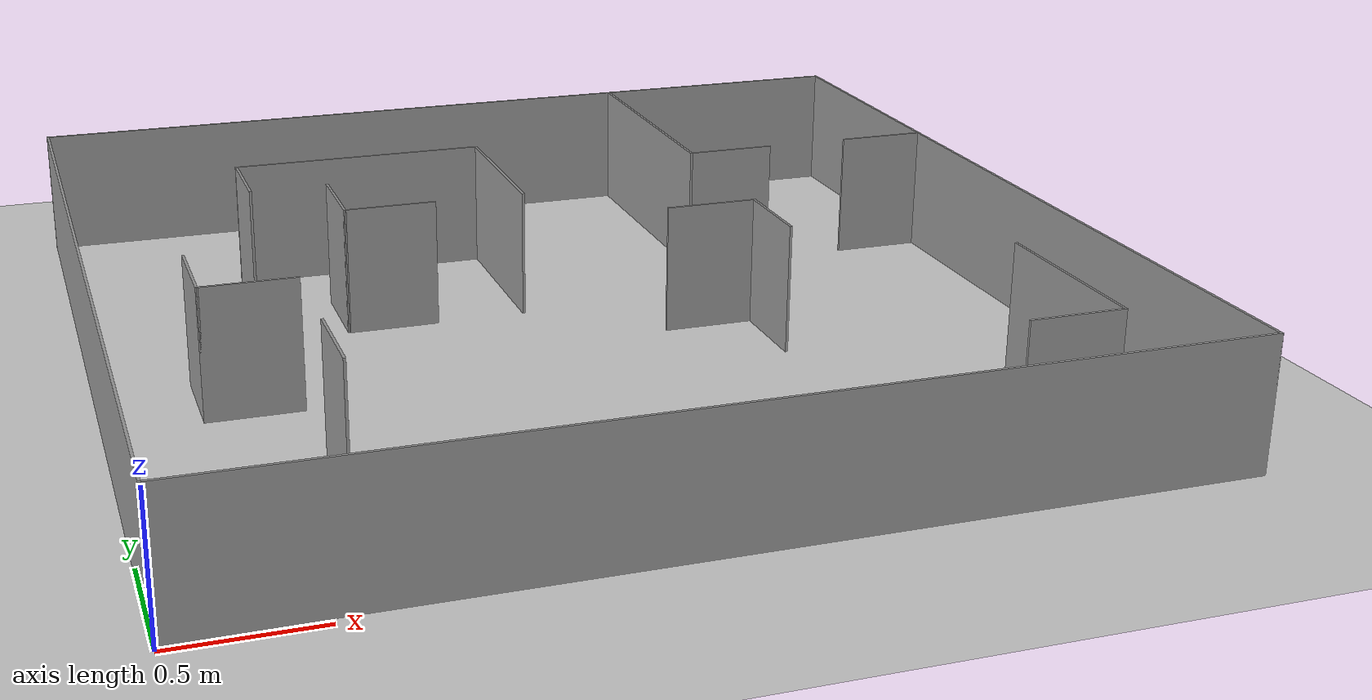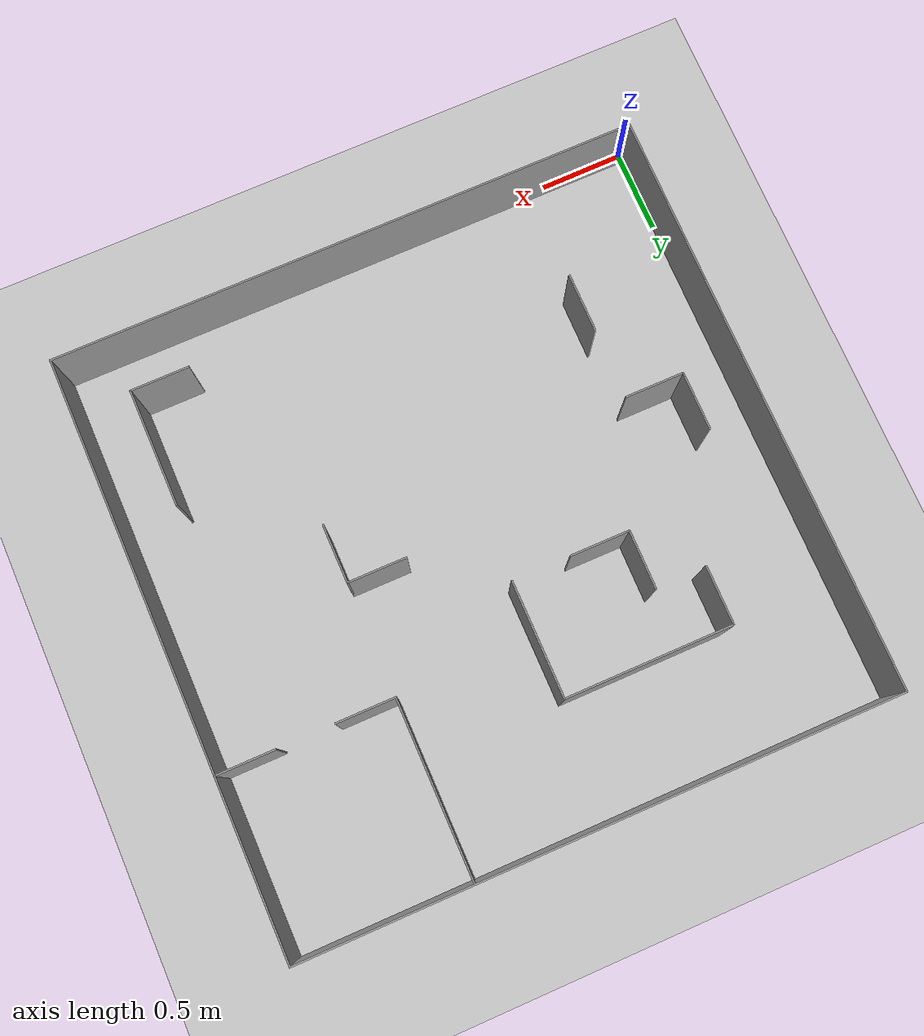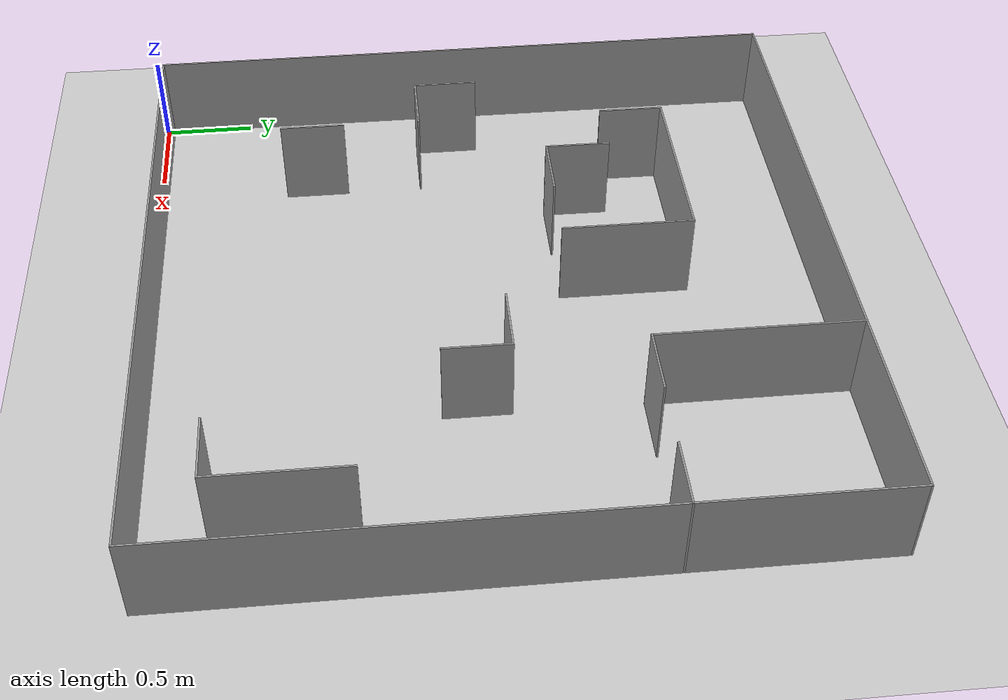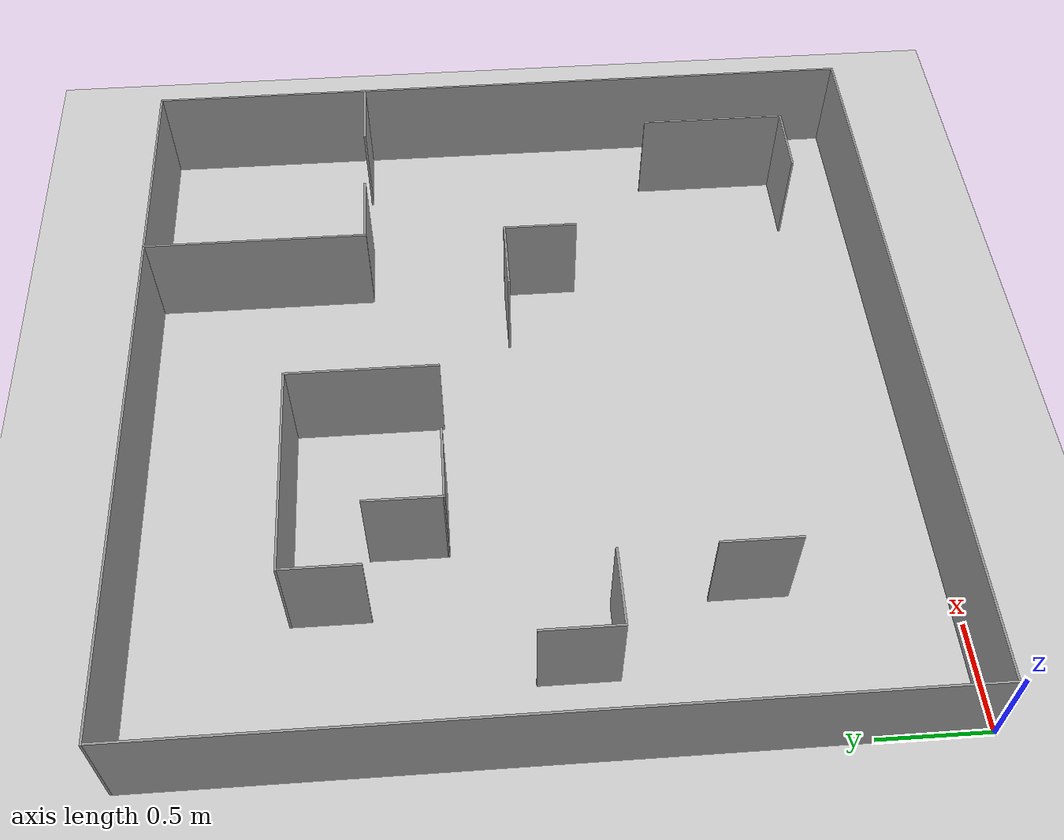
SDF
<sdf version="1.7">
 <world name="default">
  <light name="sun" type="directional">
   <pose>0 0 10 0 -0 0</pose>
   <diffuse>0.8 0.8 0.8 1</diffuse>
   <specular>0.2 0.2 0.2 1</specular>
   <attenuation>
    <range>1000</range>
    <constant>0.9</constant>
    <linear>0.01</linear>
    <quadratic>0.001</quadratic>
   </attenuation>
   <direction>-0.5 0.1 -0.9</direction>
   <spot><inner_angle>0</inner_angle><outer_angle>0</outer_angle><falloff>0</falloff></spot>
  </light>
  <model name="ground_plane">
   <static>1</static>
   <link name="link">
    <collision name="collision">
     <geometry><plane><normal>0 0 1</normal><size>100 100</size></plane></geometry>
     <surface>
      <contact><collide_bitmask>65535</collide_bitmask></contact>
      <friction><ode><mu>100</mu><mu2>50</mu2></ode></friction>
     </surface>
    </collision>
    <visual name="visual">
     <cast_shadows>0</cast_shadows>
     <geometry><plane><normal>0 0 1</normal><size>100 100</size></plane></geometry>
     <material>
      <script><uri>file://media/materials/scripts/gazebo.material</uri><name>Gazebo/Grey</name></script>
     </material>
    </visual>
   </link>
  </model>
  <gravity>0 0 -9.8</gravity>
  <magnetic_field>6e-06 2.3e-05 -4.2e-05</magnetic_field>
  <atmosphere type="adiabatic"/>
  <physics type="ode">
   <max_step_size>0.001</max_step_size>
   <real_time_factor>1</real_time_factor>
   <real_time_update_rate>1000</real_time_update_rate>
  </physics>
  <scene><ambient>0.4 0.4 0.4 1</ambient><background>0.7 0.7 0.7 1</background><shadows>1</shadows></scene>
  <spherical_coordinates>
   <surface_model>EARTH_WGS84</surface_model>
   <latitude_deg>0</latitude_deg>
   <longitude_deg>0</longitude_deg>
   <elevation>0</elevation>
   <heading_deg>0</heading_deg>
  </spherical_coordinates>
  <model name="GT_Complejo">
   <pose>1.79136 -0.828382 0 0 -0 0</pose>
   <link name="Wall_102">
    <collision name="Wall_102_Collision">
     <geometry><box><size>0.360006 0.01 0.5</size></box></geometry>
     <pose>0 0 0.25 0 -0 0</pose>
    </collision>
    <visual name="Wall_102_Visual">
     <pose>0 0 0.25 0 -0 0</pose>
     <geometry><box><size>0.360006 0.01 0.5</size></box></geometry>
     <material>
      <script><uri>file://media/materials/scripts/gazebo.material</uri><name>Gazebo/Grey</name></script>
      <ambient>1 1 1 1</ambient>
     </material>
     <meta><layer>0</layer></meta>
    </visual>
    <pose>-0.79 3.2225 0 0 -0 -1.57651</pose>
   </link>
   <link name="Wall_103">
    <collision name="Wall_103_Collision">
     <geometry><box><size>0.361 0.01 0.5</size></box></geometry>
     <pose>0 0 0.25 0 -0 0</pose>
    </collision>
    <visual name="Wall_103_Visual">
     <pose>0 0 0.25 0 -0 0</pose>
     <geometry><box><size>0.361 0.01 0.5</size></box></geometry>
     <material>
      <script><uri>file://media/materials/scripts/gazebo.material</uri><name>Gazebo/Grey</name></script>
      <ambient>1 1 1 1</ambient>
     </material>
     <meta><layer>0</layer></meta>
    </visual>
    <pose>-0.6155 3.0475 0 0 -0 0</pose>
   </link>
   <link name="Wall_108">
    <collision name="Wall_108_Collision">
     <geometry><box><size>0.36 0.01 0.5</size></box></geometry>
     <pose>0 0 0.25 0 -0 0</pose>
    </collision>
    <visual name="Wall_108_Visual">
     <pose>0 0 0.25 0 -0 0</pose>
     <geometry><box><size>0.36 0.01 0.5</size></box></geometry>
     <material>
      <script><uri>file://media/materials/scripts/gazebo.material</uri><name>Gazebo/Grey</name></script>
      <ambient>1 1 1 1</ambient>
     </material>
     <meta><layer>0</layer></meta>
    </visual>
    <pose>0.57 2.6975 0 0 -0 0</pose>
   </link>
   <link name="Wall_109">
    <collision name="Wall_109_Collision">
     <geometry><box><size>0.36 0.01 0.5</size></box></geometry>
     <pose>0 0 0.25 0 -0 0</pose>
    </collision>
    <visual name="Wall_109_Visual">
     <pose>0 0 0.25 0 -0 0</pose>
     <geometry><box><size>0.36 0.01 0.5</size></box></geometry>
     <material>
      <script><uri>file://media/materials/scripts/gazebo.material</uri><name>Gazebo/Grey</name></script>
      <ambient>1 1 1 1</ambient>
     </material>
     <meta><layer>0</layer></meta>
    </visual>
    <pose>0.745 2.5225 0 0 -0 -1.5708</pose>
   </link>
   <link name="Wall_111">
    <collision name="Wall_111_Collision">
     <geometry><box><size>0.36 0.01 0.5</size></box></geometry>
     <pose>0 0 0.25 0 -0 0</pose>
    </collision>
    <visual name="Wall_111_Visual">
     <pose>0 0 0.25 0 -0 0</pose>
     <geometry><box><size>0.36 0.01 0.5</size></box></geometry>
     <material>
      <script><uri>file://media/materials/scripts/gazebo.material</uri><name>Gazebo/Grey</name></script>
      <ambient>1 1 1 1</ambient>
     </material>
     <meta><layer>0</layer></meta>
    </visual>
    <pose>-1.445 2.5225 0 0 -0 -1.5708</pose>
   </link>
   <link name="Wall_112">
    <collision name="Wall_112_Collision">
     <geometry><box><size>0.36 0.01 0.5</size></box></geometry>
     <pose>0 0 0.25 0 -0 0</pose>
    </collision>
    <visual name="Wall_112_Visual">
     <pose>0 0 0.25 0 -0 0</pose>
     <geometry><box><size>0.36 0.01 0.5</size></box></geometry>
     <material>
      <script><uri>file://media/materials/scripts/gazebo.material</uri><name>Gazebo/Grey</name></script>
      <ambient>1 1 1 1</ambient>
     </material>
     <meta><layer>0</layer></meta>
    </visual>
    <pose>-1.27 2.3475 0 0 -0 0</pose>
   </link>
   <link name="Wall_114">
    <collision name="Wall_114_Collision">
     <geometry><box><size>0.36 0.01 0.5</size></box></geometry>
     <pose>0 0 0.25 0 -0 0</pose>
    </collision>
    <visual name="Wall_114_Visual">
     <pose>0 0 0.25 0 -0 0</pose>
     <geometry><box><size>0.36 0.01 0.5</size></box></geometry>
     <material>
      <script><uri>file://media/materials/scripts/gazebo.material</uri><name>Gazebo/Grey</name></script>
      <ambient>1 1 1 1</ambient>
     </material>
     <meta><layer>0</layer></meta>
    </visual>
    <pose>-1.095 1.7425 0 0 -0 -1.5708</pose>
   </link>
   <link name="Wall_54">
    <collision name="Wall_54_Collision">
     <geometry><box><size>3.6 0.01 0.5</size></box></geometry>
     <pose>0 0 0.25 0 -0 0</pose>
    </collision>
    <visual name="Wall_54_Visual">
     <pose>0 0 0.25 0 -0 0</pose>
     <geometry><box><size>3.6 0.01 0.5</size></box></geometry>
     <material>
      <script><uri>file://media/materials/scripts/gazebo.material</uri><name>Gazebo/Grey</name></script>
      <ambient>1 1 1 1</ambient>
     </material>
     <meta><layer>0</layer></meta>
    </visual>
    <pose>0 0.8615 0 0 -0 0</pose>
   </link>
   <link name="Wall_56">
    <collision name="Wall_56_Collision">
     <geometry><box><size>3.596 0.01 0.5</size></box></geometry>
     <pose>0 0 0.25 0 -0 0</pose>
    </collision>
    <visual name="Wall_56_Visual">
     <pose>0 0 0.25 0 -0 0</pose>
     <geometry><box><size>3.596 0.01 0.5</size></box></geometry>
     <material>
      <script><uri>file://media/materials/scripts/gazebo.material</uri><name>Gazebo/Grey</name></script>
      <ambient>1 1 1 1</ambient>
     </material>
     <meta><layer>0</layer></meta>
    </visual>
    <pose>1.795 2.6545 0 0 -0 1.5708</pose>
   </link>
   <link name="Wall_58">
    <collision name="Wall_58_Collision">
     <geometry><box><size>3.60028 0.01 0.5</size></box></geometry>
     <pose>0 0 0.25 0 -0 0</pose>
    </collision>
    <visual name="Wall_58_Visual">
     <pose>0 0 0.25 0 -0 0</pose>
     <geometry><box><size>3.60028 0.01 0.5</size></box></geometry>
     <material>
      <script><uri>file://media/materials/scripts/gazebo.material</uri><name>Gazebo/Grey</name></script>
      <ambient>1 1 1 1</ambient>
     </material>
     <meta><layer>0</layer></meta>
    </visual>
    <pose>0 4.4475 0 0 -0 3.14159</pose>
   </link>
   <link name="Wall_60">
    <collision name="Wall_60_Collision">
     <geometry><box><size>3.596 0.01 0.5</size></box></geometry>
     <pose>0 0 0.25 0 -0 0</pose>
    </collision>
    <visual name="Wall_60_Visual">
     <pose>0 0 0.25 0 -0 0</pose>
     <geometry><box><size>3.596 0.01 0.5</size></box></geometry>
     <material>
      <script><uri>file://media/materials/scripts/gazebo.material</uri><name>Gazebo/Grey</name></script>
      <ambient>1 1 1 1</ambient>
     </material>
     <meta><layer>0</layer></meta>
    </visual>
    <pose>-1.795 2.6545 0 0 -0 -1.5708</pose>
   </link>
   <link name="Wall_63">
    <collision name="Wall_63_Collision">
     <geometry><box><size>0.36 0.01 0.5</size></box></geometry>
     <pose>0 0 0.25 0 -0 0</pose>
    </collision>
    <visual name="Wall_63_Visual">
     <pose>0 0 0.25 0 -0 0</pose>
     <geometry><box><size>0.36 0.01 0.5</size></box></geometry>
     <material>
      <script><uri>file://media/materials/scripts/gazebo.material</uri><name>Gazebo/Grey</name></script>
      <ambient>1 1 1 1</ambient>
     </material>
     <meta><layer>0</layer></meta>
    </visual>
    <pose>1.27 1.2075 0 0 -0 0</pose>
   </link>
   <link name="Wall_65">
    <collision name="Wall_65_Collision">
     <geometry><box><size>0.72 0.01 0.5</size></box></geometry>
     <pose>0 0 0.25 0 -0 0</pose>
    </collision>
    <visual name="Wall_65_Visual">
     <pose>0 0 0.25 0 -0 0</pose>
     <geometry><box><size>0.72 0.01 0.5</size></box></geometry>
     <material>
      <script><uri>file://media/materials/scripts/gazebo.material</uri><name>Gazebo/Grey</name></script>
      <ambient>1 1 1 1</ambient>
     </material>
     <meta><layer>0</layer></meta>
    </visual>
    <pose>1.445 1.5625 0 0 -0 1.5708</pose>
   </link>
   <link name="Wall_67">
    <collision name="Wall_67_Collision">
     <geometry><box><size>0.36 0.01 0.5</size></box></geometry>
     <pose>0 0 0.25 0 -0 0</pose>
    </collision>
    <visual name="Wall_67_Visual">
     <pose>0 0 0.25 0 -0 0</pose>
     <geometry><box><size>0.36 0.01 0.5</size></box></geometry>
     <material>
      <script><uri>file://media/materials/scripts/gazebo.material</uri><name>Gazebo/Grey</name></script>
      <ambient>1 1 1 1</ambient>
     </material>
     <meta><layer>0</layer></meta>
    </visual>
    <pose>1.62 3.3775 0 0 -0 0</pose>
   </link>
   <link name="Wall_68">
    <collision name="Wall_68_Collision">
     <geometry><box><size>1.08 0.01 0.5</size></box></geometry>
     <pose>0 0 0.25 0 -0 0</pose>
    </collision>
    <visual name="Wall_68_Visual">
     <pose>0 0 0.25 0 -0 0</pose>
     <geometry><box><size>1.08 0.01 0.5</size></box></geometry>
     <material>
      <script><uri>file://media/materials/scripts/gazebo.material</uri><name>Gazebo/Grey</name></script>
      <ambient>1 1 1 1</ambient>
     </material>
     <meta><layer>0</layer></meta>
    </visual>
    <pose>0.745 3.9125 0 0 -0 -1.5708</pose>
   </link>
   <link name="Wall_70">
    <collision name="Wall_70_Collision">
     <geometry><box><size>0.36 0.01 0.5</size></box></geometry>
     <pose>0 0 0.25 0 -0 0</pose>
    </collision>
    <visual name="Wall_70_Visual">
     <pose>0 0 0.25 0 -0 0</pose>
     <geometry><box><size>0.36 0.01 0.5</size></box></geometry>
     <material>
      <script><uri>file://media/materials/scripts/gazebo.material</uri><name>Gazebo/Grey</name></script>
      <ambient>1 1 1 1</ambient>
     </material>
     <meta><layer>0</layer></meta>
    </visual>
    <pose>0.92 3.3775 0 0 -0 0</pose>
   </link>
   <link name="Wall_74">
    <collision name="Wall_74_Collision">
     <geometry><box><size>1.02 0.01 0.5</size></box></geometry>
     <pose>0 0 0.25 0 -0 0</pose>
    </collision>
    <visual name="Wall_74_Visual">
     <pose>0 0 0.25 0 -0 0</pose>
     <geometry><box><size>1.02 0.01 0.5</size></box></geometry>
     <material>
      <script><uri>file://media/materials/scripts/gazebo.material</uri><name>Gazebo/Grey</name></script>
      <ambient>1 1 1 1</ambient>
     </material>
     <meta><layer>0</layer></meta>
    </visual>
    <pose>-0.59 3.7475 0 0 -0 0</pose>
   </link>
   <link name="Wall_80">
    <collision name="Wall_80_Collision">
     <geometry><box><size>0.71 0.01 0.5</size></box></geometry>
     <pose>0 0 0.25 0 -0 0</pose>
    </collision>
    <visual name="Wall_80_Visual">
     <pose>0 0 0.25 0 -0 0</pose>
     <geometry><box><size>0.71 0.01 0.5</size></box></geometry>
     <material>
      <script><uri>file://media/materials/scripts/gazebo.material</uri><name>Gazebo/Grey</name></script>
      <ambient>1 1 1 1</ambient>
     </material>
     <meta><layer>0</layer></meta>
    </visual>
    <pose>-0.085 3.3975 0 0 -0 -1.5708</pose>
   </link>
   <link name="Wall_82">
    <collision name="Wall_82_Collision">
     <geometry><box><size>0.36 0.01 0.5</size></box></geometry>
     <pose>0 0 0.25 0 -0 0</pose>
    </collision>
    <visual name="Wall_82_Visual">
     <pose>0 0 0.25 0 -0 0</pose>
     <geometry><box><size>0.36 0.01 0.5</size></box></geometry>
     <material>
      <script><uri>file://media/materials/scripts/gazebo.material</uri><name>Gazebo/Grey</name></script>
      <ambient>1 1 1 1</ambient>
     </material>
     <meta><layer>0</layer></meta>
    </visual>
    <pose>-1.095 3.5725 0 0 -0 -1.5708</pose>
   </link>
   <static>1</static>
  </model>
 </world>
</sdf>
